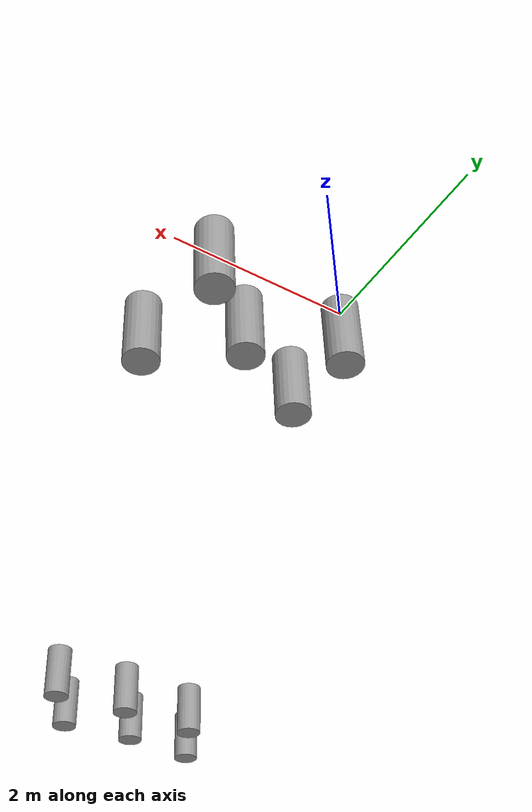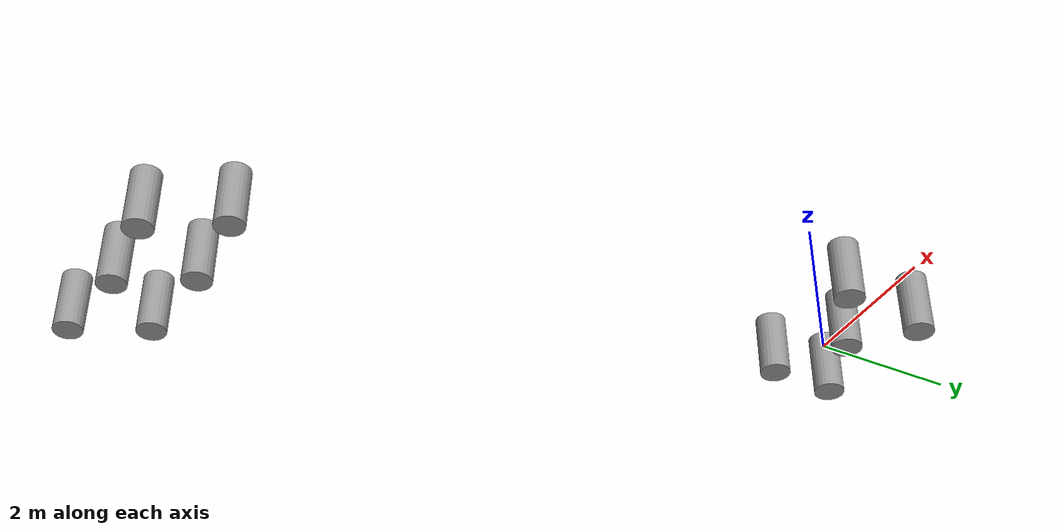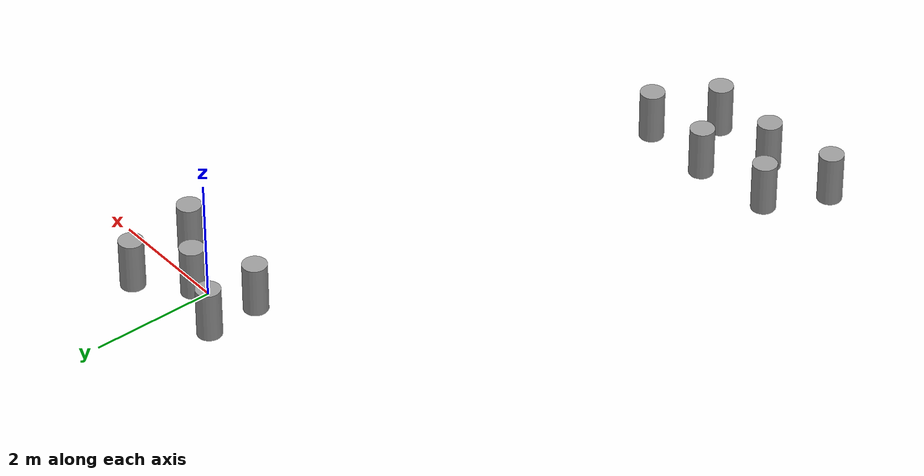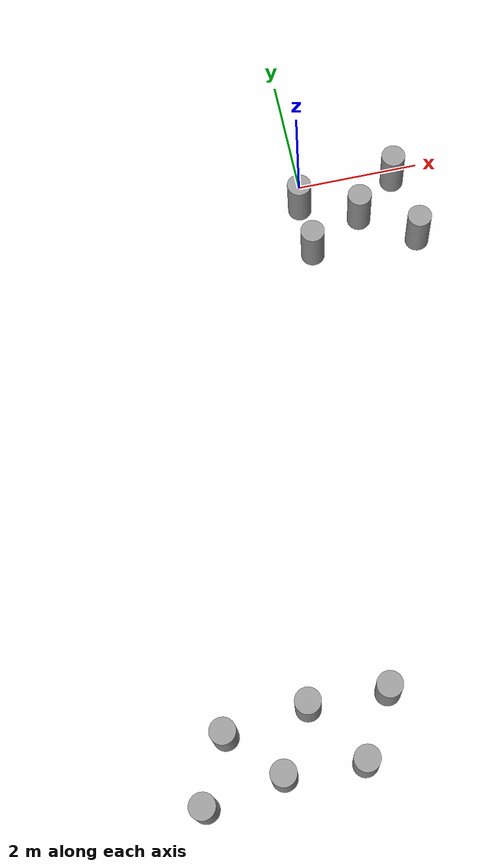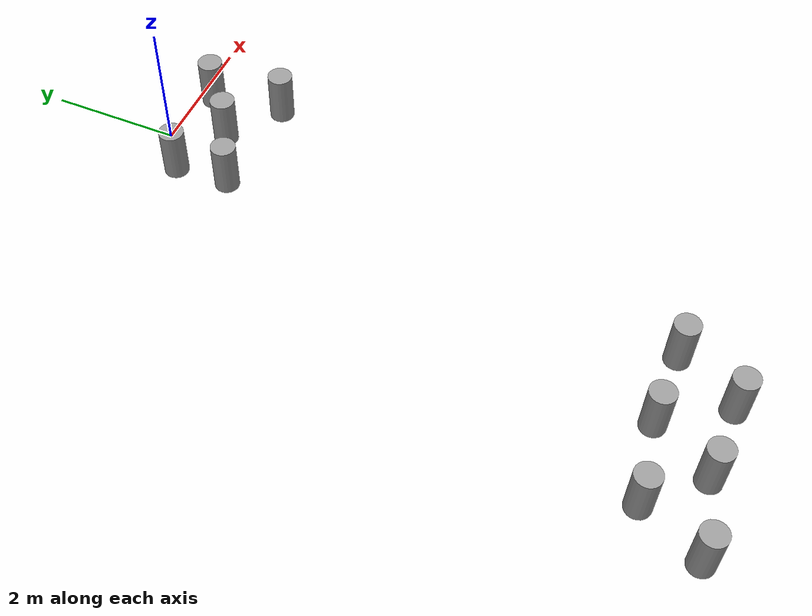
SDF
<?xml version='1.0'?>
<sdf version='1.7'>
  <model name='cilindro_01'>
    <link name='link'>
      <inertial>
        <mass>0.0394565</mass>
        <inertia>
          <ixx>0.00272074</ixx>
          <ixy>0</ixy>
          <ixz>0</ixz>
          <iyy>0.00272074</iyy>
          <iyz>0</iyz>
          <izz>0.00078004</izz>
        </inertia>
        <pose>0 0 0 0 -0 0</pose>
      </inertial>
      <self_collide>0</self_collide>
      <enable_wind>0</enable_wind>
      <kinematic>0</kinematic>
      <pose>-0 0 -0.322996 0 -0 0</pose>
      <gravity>1</gravity>
      <visual name='visual'>
        <geometry>
          <cylinder>
            <radius>0.198845</radius>
            <length>0.84193</length>
          </cylinder>
        </geometry>
        <material>
          <script>
            <name>Gazebo/Grey</name>
            <uri>file://media/materials/scripts/gazebo.material</uri>
          </script>
          <shader type='vertex'>
            <normal_map>__default__</normal_map>
          </shader>
          <ambient>0.128 0.128 0.128 1</ambient>
          <diffuse>0.128 0.128 0.128 1</diffuse>
          <specular>0.128 0.128 0.128 1</specular>
          <emissive>0 0 0 1</emissive>
        </material>
        <pose>0 0 0 0 -0 0</pose>
        <transparency>0</transparency>
        <cast_shadows>1</cast_shadows>
      </visual>
      <collision name='collision'>
        <laser_retro>0</laser_retro>
        <max_contacts>10</max_contacts>
        <pose>0 0 0 0 -0 0</pose>
        <geometry>
          <cylinder>
            <radius>0.198845</radius>
            <length>0.84193</length>
          </cylinder>
        </geometry>
        <surface>
          <friction>
            <ode>
              <mu>1</mu>
              <mu2>1</mu2>
              <fdir1>0 0 0</fdir1>
              <slip1>0</slip1>
              <slip2>0</slip2>
            </ode>
            <torsional>
              <coefficient>1</coefficient>
              <patch_radius>0</patch_radius>
              <surface_radius>0</surface_radius>
              <use_patch_radius>1</use_patch_radius>
              <ode>
                <slip>0</slip>
              </ode>
            </torsional>
          </friction>
          <bounce>
            <restitution_coefficient>0</restitution_coefficient>
            <threshold>1e+06</threshold>
          </bounce>
          <contact>
            <collide_without_contact>0</collide_without_contact>
            <collide_without_contact_bitmask>1</collide_without_contact_bitmask>
            <collide_bitmask>1</collide_bitmask>
            <ode>
              <soft_cfm>0</soft_cfm>
              <soft_erp>0.2</soft_erp>
              <kp>1e+13</kp>
              <kd>1</kd>
              <max_vel>0.01</max_vel>
              <min_depth>0</min_depth>
            </ode>
            <bullet>
              <split_impulse>1</split_impulse>
              <split_impulse_penetration_threshold>-0.01</split_impulse_penetration_threshold>
              <soft_cfm>0</soft_cfm>
              <soft_erp>0.2</soft_erp>
              <kp>1e+13</kp>
              <kd>1</kd>
            </bullet>
          </contact>
        </surface>
      </collision>
    </link>
    <link name='link_clone'>
      <inertial>
        <mass>0.0394565</mass>
        <inertia>
          <ixx>0.00272074</ixx>
          <ixy>0</ixy>
          <ixz>0</ixz>
          <iyy>0.00272074</iyy>
          <iyz>0</iyz>
          <izz>0.00078004</izz>
        </inertia>
        <pose>0 0 0 0 -0 0</pose>
      </inertial>
      <self_collide>0</self_collide>
      <enable_wind>0</enable_wind>
      <kinematic>0</kinematic>
      <pose>0.036663 -0.893591 -0.322997 1e-06 1e-06 0</pose>
      <gravity>1</gravity>
      <visual name='visual'>
        <geometry>
          <cylinder>
            <radius>0.198845</radius>
            <length>0.84193</length>
          </cylinder>
        </geometry>
        <material>
          <script>
            <name>Gazebo/Grey</name>
            <uri>file://media/materials/scripts/gazebo.material</uri>
          </script>
          <shader type='vertex'>
            <normal_map>__default__</normal_map>
          </shader>
          <ambient>0.128 0.128 0.128 1</ambient>
          <diffuse>0.128 0.128 0.128 1</diffuse>
          <specular>0.128 0.128 0.128 1</specular>
          <emissive>0 0 0 1</emissive>
        </material>
        <pose>0 0 0 0 -0 0</pose>
        <transparency>0</transparency>
        <cast_shadows>1</cast_shadows>
      </visual>
      <collision name='collision'>
        <laser_retro>0</laser_retro>
        <max_contacts>10</max_contacts>
        <pose>0 0 0 0 -0 0</pose>
        <geometry>
          <cylinder>
            <radius>0.198845</radius>
            <length>0.84193</length>
          </cylinder>
        </geometry>
        <surface>
          <friction>
            <ode>
              <mu>1</mu>
              <mu2>1</mu2>
              <fdir1>0 0 0</fdir1>
              <slip1>0</slip1>
              <slip2>0</slip2>
            </ode>
            <torsional>
              <coefficient>1</coefficient>
              <patch_radius>0</patch_radius>
              <surface_radius>0</surface_radius>
              <use_patch_radius>1</use_patch_radius>
              <ode>
                <slip>0</slip>
              </ode>
            </torsional>
          </friction>
          <bounce>
            <restitution_coefficient>0</restitution_coefficient>
            <threshold>1e+06</threshold>
          </bounce>
          <contact>
            <collide_without_contact>0</collide_without_contact>
            <collide_without_contact_bitmask>1</collide_without_contact_bitmask>
            <collide_bitmask>1</collide_bitmask>
            <ode>
              <soft_cfm>0</soft_cfm>
              <soft_erp>0.2</soft_erp>
              <kp>1e+13</kp>
              <kd>1</kd>
              <max_vel>0.01</max_vel>
              <min_depth>0</min_depth>
            </ode>
            <bullet>
              <split_impulse>1</split_impulse>
              <split_impulse_penetration_threshold>-0.01</split_impulse_penetration_threshold>
              <soft_cfm>0</soft_cfm>
              <soft_erp>0.2</soft_erp>
              <kp>1e+13</kp>
              <kd>1</kd>
            </bullet>
          </contact>
        </surface>
      </collision>
    </link>
    <link name='link_clone_0'>
      <inertial>
        <mass>0.0394565</mass>
        <inertia>
          <ixx>0.00272074</ixx>
          <ixy>0</ixy>
          <ixz>0</ixz>
          <iyy>0.00272074</iyy>
          <iyz>0</iyz>
          <izz>0.00078004</izz>
        </inertia>
        <pose>0 0 0 0 -0 0</pose>
      </inertial>
      <self_collide>0</self_collide>
      <enable_wind>0</enable_wind>
      <kinematic>0</kinematic>
      <pose>0.947696 -0.400326 -0.322998 1e-06 1e-06 0</pose>
      <gravity>1</gravity>
      <visual name='visual'>
        <geometry>
          <cylinder>
            <radius>0.198845</radius>
            <length>0.84193</length>
          </cylinder>
        </geometry>
        <material>
          <script>
            <name>Gazebo/Grey</name>
            <uri>file://media/materials/scripts/gazebo.material</uri>
          </script>
          <shader type='vertex'>
            <normal_map>__default__</normal_map>
          </shader>
          <ambient>0.128 0.128 0.128 1</ambient>
          <diffuse>0.128 0.128 0.128 1</diffuse>
          <specular>0.128 0.128 0.128 1</specular>
          <emissive>0 0 0 1</emissive>
        </material>
        <pose>0 0 0 0 -0 0</pose>
        <transparency>0</transparency>
        <cast_shadows>1</cast_shadows>
      </visual>
      <collision name='collision'>
        <laser_retro>0</laser_retro>
        <max_contacts>10</max_contacts>
        <pose>0 0 0 0 -0 0</pose>
        <geometry>
          <cylinder>
            <radius>0.198845</radius>
            <length>0.84193</length>
          </cylinder>
        </geometry>
        <surface>
          <friction>
            <ode>
              <mu>1</mu>
              <mu2>1</mu2>
              <fdir1>0 0 0</fdir1>
              <slip1>0</slip1>
              <slip2>0</slip2>
            </ode>
            <torsional>
              <coefficient>1</coefficient>
              <patch_radius>0</patch_radius>
              <surface_radius>0</surface_radius>
              <use_patch_radius>1</use_patch_radius>
              <ode>
                <slip>0</slip>
              </ode>
            </torsional>
          </friction>
          <bounce>
            <restitution_coefficient>0</restitution_coefficient>
            <threshold>1e+06</threshold>
          </bounce>
          <contact>
            <collide_without_contact>0</collide_without_contact>
            <collide_without_contact_bitmask>1</collide_without_contact_bitmask>
            <collide_bitmask>1</collide_bitmask>
            <ode>
              <soft_cfm>0</soft_cfm>
              <soft_erp>0.2</soft_erp>
              <kp>1e+13</kp>
              <kd>1</kd>
              <max_vel>0.01</max_vel>
              <min_depth>0</min_depth>
            </ode>
            <bullet>
              <split_impulse>1</split_impulse>
              <split_impulse_penetration_threshold>-0.01</split_impulse_penetration_threshold>
              <soft_cfm>0</soft_cfm>
              <soft_erp>0.2</soft_erp>
              <kp>1e+13</kp>
              <kd>1</kd>
            </bullet>
          </contact>
        </surface>
      </collision>
    </link>
    <link name='link_clone_1'>
      <inertial>
        <mass>0.0394565</mass>
        <inertia>
          <ixx>0.00272074</ixx>
          <ixy>0</ixy>
          <ixz>0</ixz>
          <iyy>0.00272074</iyy>
          <iyz>0</iyz>
          <izz>0.00078004</izz>
        </inertia>
        <pose>0 0 0 0 -0 0</pose>
      </inertial>
      <self_collide>0</self_collide>
      <enable_wind>0</enable_wind>
      <kinematic>0</kinematic>
      <pose>1.6677 0.204842 -0.322998 1e-06 1e-06 0</pose>
      <gravity>1</gravity>
      <visual name='visual'>
        <geometry>
          <cylinder>
            <radius>0.198845</radius>
            <length>0.84193</length>
          </cylinder>
        </geometry>
        <material>
          <script>
            <name>Gazebo/Grey</name>
            <uri>file://media/materials/scripts/gazebo.material</uri>
          </script>
          <shader type='vertex'>
            <normal_map>__default__</normal_map>
          </shader>
          <ambient>0.128 0.128 0.128 1</ambient>
          <diffuse>0.128 0.128 0.128 1</diffuse>
          <specular>0.128 0.128 0.128 1</specular>
          <emissive>0 0 0 1</emissive>
        </material>
        <pose>0 0 0 0 -0 0</pose>
        <transparency>0</transparency>
        <cast_shadows>1</cast_shadows>
      </visual>
      <collision name='collision'>
        <laser_retro>0</laser_retro>
        <max_contacts>10</max_contacts>
        <pose>0 0 0 0 -0 0</pose>
        <geometry>
          <cylinder>
            <radius>0.198845</radius>
            <length>0.84193</length>
          </cylinder>
        </geometry>
        <surface>
          <friction>
            <ode>
              <mu>1</mu>
              <mu2>1</mu2>
              <fdir1>0 0 0</fdir1>
              <slip1>0</slip1>
              <slip2>0</slip2>
            </ode>
            <torsional>
              <coefficient>1</coefficient>
              <patch_radius>0</patch_radius>
              <surface_radius>0</surface_radius>
              <use_patch_radius>1</use_patch_radius>
              <ode>
                <slip>0</slip>
              </ode>
            </torsional>
          </friction>
          <bounce>
            <restitution_coefficient>0</restitution_coefficient>
            <threshold>1e+06</threshold>
          </bounce>
          <contact>
            <collide_without_contact>0</collide_without_contact>
            <collide_without_contact_bitmask>1</collide_without_contact_bitmask>
            <collide_bitmask>1</collide_bitmask>
            <ode>
              <soft_cfm>0</soft_cfm>
              <soft_erp>0.2</soft_erp>
              <kp>1e+13</kp>
              <kd>1</kd>
              <max_vel>0.01</max_vel>
              <min_depth>0</min_depth>
            </ode>
            <bullet>
              <split_impulse>1</split_impulse>
              <split_impulse_penetration_threshold>-0.01</split_impulse_penetration_threshold>
              <soft_cfm>0</soft_cfm>
              <soft_erp>0.2</soft_erp>
              <kp>1e+13</kp>
              <kd>1</kd>
            </bullet>
          </contact>
        </surface>
      </collision>
    </link>
    <link name='link_clone_2'>
      <inertial>
        <mass>0.0394565</mass>
        <inertia>
          <ixx>0.00272074</ixx>
          <ixy>0</ixy>
          <ixz>0</ixz>
          <iyy>0.00272074</iyy>
          <iyz>0</iyz>
          <izz>0.00078004</izz>
        </inertia>
        <pose>0 0 0 0 -0 0</pose>
      </inertial>
      <self_collide>0</self_collide>
      <enable_wind>0</enable_wind>
      <kinematic>0</kinematic>
      <pose>1.82642 -0.998041 -0.323 1e-06 1e-06 0</pose>
      <gravity>1</gravity>
      <visual name='visual'>
        <geometry>
          <cylinder>
            <radius>0.198845</radius>
            <length>0.84193</length>
          </cylinder>
        </geometry>
        <material>
          <script>
            <name>Gazebo/Grey</name>
            <uri>file://media/materials/scripts/gazebo.material</uri>
          </script>
          <shader type='vertex'>
            <normal_map>__default__</normal_map>
          </shader>
          <ambient>0.128 0.128 0.128 1</ambient>
          <diffuse>0.128 0.128 0.128 1</diffuse>
          <specular>0.128 0.128 0.128 1</specular>
          <emissive>0 0 0 1</emissive>
        </material>
        <pose>0 0 0 0 -0 0</pose>
        <transparency>0</transparency>
        <cast_shadows>1</cast_shadows>
      </visual>
      <collision name='collision'>
        <laser_retro>0</laser_retro>
        <max_contacts>10</max_contacts>
        <pose>0 0 0 0 -0 0</pose>
        <geometry>
          <cylinder>
            <radius>0.198845</radius>
            <length>0.84193</length>
          </cylinder>
        </geometry>
        <surface>
          <friction>
            <ode>
              <mu>1</mu>
              <mu2>1</mu2>
              <fdir1>0 0 0</fdir1>
              <slip1>0</slip1>
              <slip2>0</slip2>
            </ode>
            <torsional>
              <coefficient>1</coefficient>
              <patch_radius>0</patch_radius>
              <surface_radius>0</surface_radius>
              <use_patch_radius>1</use_patch_radius>
              <ode>
                <slip>0</slip>
              </ode>
            </torsional>
          </friction>
          <bounce>
            <restitution_coefficient>0</restitution_coefficient>
            <threshold>1e+06</threshold>
          </bounce>
          <contact>
            <collide_without_contact>0</collide_without_contact>
            <collide_without_contact_bitmask>1</collide_without_contact_bitmask>
            <collide_bitmask>1</collide_bitmask>
            <ode>
              <soft_cfm>0</soft_cfm>
              <soft_erp>0.2</soft_erp>
              <kp>1e+13</kp>
              <kd>1</kd>
              <max_vel>0.01</max_vel>
              <min_depth>0</min_depth>
            </ode>
            <bullet>
              <split_impulse>1</split_impulse>
              <split_impulse_penetration_threshold>-0.01</split_impulse_penetration_threshold>
              <soft_cfm>0</soft_cfm>
              <soft_erp>0.2</soft_erp>
              <kp>1e+13</kp>
              <kd>1</kd>
            </bullet>
          </contact>
        </surface>
      </collision>
    </link>
    <link name='link_clone_3'>
      <inertial>
        <mass>0.0394565</mass>
        <inertia>
          <ixx>0.00272074</ixx>
          <ixy>0</ixy>
          <ixz>0</ixz>
          <iyy>0.00272074</iyy>
          <iyz>0</iyz>
          <izz>0.00078004</izz>
        </inertia>
        <pose>0 0 0 0 -0 0</pose>
      </inertial>
      <self_collide>0</self_collide>
      <enable_wind>0</enable_wind>
      <kinematic>0</kinematic>
      <pose>-2.93281 -8.46876 -0.323004 1e-06 1e-06 0</pose>
      <gravity>1</gravity>
      <visual name='visual'>
        <geometry>
          <cylinder>
            <radius>0.198845</radius>
            <length>0.84193</length>
          </cylinder>
        </geometry>
        <material>
          <script>
            <name>Gazebo/Grey</name>
            <uri>file://media/materials/scripts/gazebo.material</uri>
          </script>
          <shader type='vertex'>
            <normal_map>__default__</normal_map>
          </shader>
          <ambient>0.128 0.128 0.128 1</ambient>
          <diffuse>0.128 0.128 0.128 1</diffuse>
          <specular>0.128 0.128 0.128 1</specular>
          <emissive>0 0 0 1</emissive>
        </material>
        <pose>0 0 0 0 -0 0</pose>
        <transparency>0</transparency>
        <cast_shadows>1</cast_shadows>
      </visual>
      <collision name='collision'>
        <laser_retro>0</laser_retro>
        <max_contacts>10</max_contacts>
        <pose>0 0 0 0 -0 0</pose>
        <geometry>
          <cylinder>
            <radius>0.198845</radius>
            <length>0.84193</length>
          </cylinder>
        </geometry>
        <surface>
          <friction>
            <ode>
              <mu>1</mu>
              <mu2>1</mu2>
              <fdir1>0 0 0</fdir1>
              <slip1>0</slip1>
              <slip2>0</slip2>
            </ode>
            <torsional>
              <coefficient>1</coefficient>
              <patch_radius>0</patch_radius>
              <surface_radius>0</surface_radius>
              <use_patch_radius>1</use_patch_radius>
              <ode>
                <slip>0</slip>
              </ode>
            </torsional>
          </friction>
          <bounce>
            <restitution_coefficient>0</restitution_coefficient>
            <threshold>1e+06</threshold>
          </bounce>
          <contact>
            <collide_without_contact>0</collide_without_contact>
            <collide_without_contact_bitmask>1</collide_without_contact_bitmask>
            <collide_bitmask>1</collide_bitmask>
            <ode>
              <soft_cfm>0</soft_cfm>
              <soft_erp>0.2</soft_erp>
              <kp>1e+13</kp>
              <kd>1</kd>
              <max_vel>0.01</max_vel>
              <min_depth>0</min_depth>
            </ode>
            <bullet>
              <split_impulse>1</split_impulse>
              <split_impulse_penetration_threshold>-0.01</split_impulse_penetration_threshold>
              <soft_cfm>0</soft_cfm>
              <soft_erp>0.2</soft_erp>
              <kp>1e+13</kp>
              <kd>1</kd>
            </bullet>
          </contact>
        </surface>
      </collision>
    </link>
    <link name='link_clone_4'>
      <inertial>
        <mass>0.0394565</mass>
        <inertia>
          <ixx>0.00272074</ixx>
          <ixy>0</ixy>
          <ixz>0</ixz>
          <iyy>0.00272074</iyy>
          <iyz>0</iyz>
          <izz>0.00078004</izz>
        </inertia>
        <pose>0 0 0 0 -0 0</pose>
      </inertial>
      <self_collide>0</self_collide>
      <enable_wind>0</enable_wind>
      <kinematic>0</kinematic>
      <pose>-2.20155 -9.22768 -0.323006 1e-06 1e-06 0</pose>
      <gravity>1</gravity>
      <visual name='visual'>
        <geometry>
          <cylinder>
            <radius>0.198845</radius>
            <length>0.84193</length>
          </cylinder>
        </geometry>
        <material>
          <script>
            <name>Gazebo/Grey</name>
            <uri>file://media/materials/scripts/gazebo.material</uri>
          </script>
          <shader type='vertex'>
            <normal_map>__default__</normal_map>
          </shader>
          <ambient>0.128 0.128 0.128 1</ambient>
          <diffuse>0.128 0.128 0.128 1</diffuse>
          <specular>0.128 0.128 0.128 1</specular>
          <emissive>0 0 0 1</emissive>
        </material>
        <pose>0 0 0 0 -0 0</pose>
        <transparency>0</transparency>
        <cast_shadows>1</cast_shadows>
      </visual>
      <collision name='collision'>
        <laser_retro>0</laser_retro>
        <max_contacts>10</max_contacts>
        <pose>0 0 0 0 -0 0</pose>
        <geometry>
          <cylinder>
            <radius>0.198845</radius>
            <length>0.84193</length>
          </cylinder>
        </geometry>
        <surface>
          <friction>
            <ode>
              <mu>1</mu>
              <mu2>1</mu2>
              <fdir1>0 0 0</fdir1>
              <slip1>0</slip1>
              <slip2>0</slip2>
            </ode>
            <torsional>
              <coefficient>1</coefficient>
              <patch_radius>0</patch_radius>
              <surface_radius>0</surface_radius>
              <use_patch_radius>1</use_patch_radius>
              <ode>
                <slip>0</slip>
              </ode>
            </torsional>
          </friction>
          <bounce>
            <restitution_coefficient>0</restitution_coefficient>
            <threshold>1e+06</threshold>
          </bounce>
          <contact>
            <collide_without_contact>0</collide_without_contact>
            <collide_without_contact_bitmask>1</collide_without_contact_bitmask>
            <collide_bitmask>1</collide_bitmask>
            <ode>
              <soft_cfm>0</soft_cfm>
              <soft_erp>0.2</soft_erp>
              <kp>1e+13</kp>
              <kd>1</kd>
              <max_vel>0.01</max_vel>
              <min_depth>0</min_depth>
            </ode>
            <bullet>
              <split_impulse>1</split_impulse>
              <split_impulse_penetration_threshold>-0.01</split_impulse_penetration_threshold>
              <soft_cfm>0</soft_cfm>
              <soft_erp>0.2</soft_erp>
              <kp>1e+13</kp>
              <kd>1</kd>
            </bullet>
          </contact>
        </surface>
      </collision>
    </link>
    <link name='link_clone_5'>
      <inertial>
        <mass>0.0394565</mass>
        <inertia>
          <ixx>0.00272074</ixx>
          <ixy>0</ixy>
          <ixz>0</ixz>
          <iyy>0.00272074</iyy>
          <iyz>0</iyz>
          <izz>0.00078004</izz>
        </inertia>
        <pose>0 0 0 0 -0 0</pose>
      </inertial>
      <self_collide>0</self_collide>
      <enable_wind>0</enable_wind>
      <kinematic>0</kinematic>
      <pose>-1.65318 -8.31618 -0.323006 1e-06 1e-06 0</pose>
      <gravity>1</gravity>
      <visual name='visual'>
        <geometry>
          <cylinder>
            <radius>0.198845</radius>
            <length>0.84193</length>
          </cylinder>
        </geometry>
        <material>
          <script>
            <name>Gazebo/Grey</name>
            <uri>file://media/materials/scripts/gazebo.material</uri>
          </script>
          <shader type='vertex'>
            <normal_map>__default__</normal_map>
          </shader>
          <ambient>0.128 0.128 0.128 1</ambient>
          <diffuse>0.128 0.128 0.128 1</diffuse>
          <specular>0.128 0.128 0.128 1</specular>
          <emissive>0 0 0 1</emissive>
        </material>
        <pose>0 0 0 0 -0 0</pose>
        <transparency>0</transparency>
        <cast_shadows>1</cast_shadows>
      </visual>
      <collision name='collision'>
        <laser_retro>0</laser_retro>
        <max_contacts>10</max_contacts>
        <pose>0 0 0 0 -0 0</pose>
        <geometry>
          <cylinder>
            <radius>0.198845</radius>
            <length>0.84193</length>
          </cylinder>
        </geometry>
        <surface>
          <friction>
            <ode>
              <mu>1</mu>
              <mu2>1</mu2>
              <fdir1>0 0 0</fdir1>
              <slip1>0</slip1>
              <slip2>0</slip2>
            </ode>
            <torsional>
              <coefficient>1</coefficient>
              <patch_radius>0</patch_radius>
              <surface_radius>0</surface_radius>
              <use_patch_radius>1</use_patch_radius>
              <ode>
                <slip>0</slip>
              </ode>
            </torsional>
          </friction>
          <bounce>
            <restitution_coefficient>0</restitution_coefficient>
            <threshold>1e+06</threshold>
          </bounce>
          <contact>
            <collide_without_contact>0</collide_without_contact>
            <collide_without_contact_bitmask>1</collide_without_contact_bitmask>
            <collide_bitmask>1</collide_bitmask>
            <ode>
              <soft_cfm>0</soft_cfm>
              <soft_erp>0.2</soft_erp>
              <kp>1e+13</kp>
              <kd>1</kd>
              <max_vel>0.01</max_vel>
              <min_depth>0</min_depth>
            </ode>
            <bullet>
              <split_impulse>1</split_impulse>
              <split_impulse_penetration_threshold>-0.01</split_impulse_penetration_threshold>
              <soft_cfm>0</soft_cfm>
              <soft_erp>0.2</soft_erp>
              <kp>1e+13</kp>
              <kd>1</kd>
            </bullet>
          </contact>
        </surface>
      </collision>
    </link>
    <link name='link_clone_6'>
      <inertial>
        <mass>0.0394565</mass>
        <inertia>
          <ixx>0.00272074</ixx>
          <ixy>0</ixy>
          <ixz>0</ixz>
          <iyy>0.00272074</iyy>
          <iyz>0</iyz>
          <izz>0.00078004</izz>
        </inertia>
        <pose>0 0 0 0 -0 0</pose>
      </inertial>
      <self_collide>0</self_collide>
      <enable_wind>0</enable_wind>
      <kinematic>0</kinematic>
      <pose>-3.40514 -9.42164 -0.323005 1e-06 1e-06 0</pose>
      <gravity>1</gravity>
      <visual name='visual'>
        <geometry>
          <cylinder>
            <radius>0.198845</radius>
            <length>0.84193</length>
          </cylinder>
        </geometry>
        <material>
          <script>
            <name>Gazebo/Grey</name>
            <uri>file://media/materials/scripts/gazebo.material</uri>
          </script>
          <shader type='vertex'>
            <normal_map>__default__</normal_map>
          </shader>
          <ambient>0.128 0.128 0.128 1</ambient>
          <diffuse>0.128 0.128 0.128 1</diffuse>
          <specular>0.128 0.128 0.128 1</specular>
          <emissive>0 0 0 1</emissive>
        </material>
        <pose>0 0 0 0 -0 0</pose>
        <transparency>0</transparency>
        <cast_shadows>1</cast_shadows>
      </visual>
      <collision name='collision'>
        <laser_retro>0</laser_retro>
        <max_contacts>10</max_contacts>
        <pose>0 0 0 0 -0 0</pose>
        <geometry>
          <cylinder>
            <radius>0.198845</radius>
            <length>0.84193</length>
          </cylinder>
        </geometry>
        <surface>
          <friction>
            <ode>
              <mu>1</mu>
              <mu2>1</mu2>
              <fdir1>0 0 0</fdir1>
              <slip1>0</slip1>
              <slip2>0</slip2>
            </ode>
            <torsional>
              <coefficient>1</coefficient>
              <patch_radius>0</patch_radius>
              <surface_radius>0</surface_radius>
              <use_patch_radius>1</use_patch_radius>
              <ode>
                <slip>0</slip>
              </ode>
            </torsional>
          </friction>
          <bounce>
            <restitution_coefficient>0</restitution_coefficient>
            <threshold>1e+06</threshold>
          </bounce>
          <contact>
            <collide_without_contact>0</collide_without_contact>
            <collide_without_contact_bitmask>1</collide_without_contact_bitmask>
            <collide_bitmask>1</collide_bitmask>
            <ode>
              <soft_cfm>0</soft_cfm>
              <soft_erp>0.2</soft_erp>
              <kp>1e+13</kp>
              <kd>1</kd>
              <max_vel>0.01</max_vel>
              <min_depth>0</min_depth>
            </ode>
            <bullet>
              <split_impulse>1</split_impulse>
              <split_impulse_penetration_threshold>-0.01</split_impulse_penetration_threshold>
              <soft_cfm>0</soft_cfm>
              <soft_erp>0.2</soft_erp>
              <kp>1e+13</kp>
              <kd>1</kd>
            </bullet>
          </contact>
        </surface>
      </collision>
    </link>
    <link name='link_clone_7'>
      <inertial>
        <mass>0.0394565</mass>
        <inertia>
          <ixx>0.00272074</ixx>
          <ixy>0</ixy>
          <ixz>0</ixz>
          <iyy>0.00272074</iyy>
          <iyz>0</iyz>
          <izz>0.00078004</izz>
        </inertia>
        <pose>0 0 0 0 -0 0</pose>
      </inertial>
      <self_collide>0</self_collide>
      <enable_wind>0</enable_wind>
      <kinematic>0</kinematic>
      <pose>-0.998227 -9.28325 -0.323008 1e-06 1e-06 0</pose>
      <gravity>1</gravity>
      <visual name='visual'>
        <geometry>
          <cylinder>
            <radius>0.198845</radius>
            <length>0.84193</length>
          </cylinder>
        </geometry>
        <material>
          <script>
            <name>Gazebo/Grey</name>
            <uri>file://media/materials/scripts/gazebo.material</uri>
          </script>
          <shader type='vertex'>
            <normal_map>__default__</normal_map>
          </shader>
          <ambient>0.128 0.128 0.128 1</ambient>
          <diffuse>0.128 0.128 0.128 1</diffuse>
          <specular>0.128 0.128 0.128 1</specular>
          <emissive>0 0 0 1</emissive>
        </material>
        <pose>0 0 0 0 -0 0</pose>
        <transparency>0</transparency>
        <cast_shadows>1</cast_shadows>
      </visual>
      <collision name='collision'>
        <laser_retro>0</laser_retro>
        <max_contacts>10</max_contacts>
        <pose>0 0 0 0 -0 0</pose>
        <geometry>
          <cylinder>
            <radius>0.198845</radius>
            <length>0.84193</length>
          </cylinder>
        </geometry>
        <surface>
          <friction>
            <ode>
              <mu>1</mu>
              <mu2>1</mu2>
              <fdir1>0 0 0</fdir1>
              <slip1>0</slip1>
              <slip2>0</slip2>
            </ode>
            <torsional>
              <coefficient>1</coefficient>
              <patch_radius>0</patch_radius>
              <surface_radius>0</surface_radius>
              <use_patch_radius>1</use_patch_radius>
              <ode>
                <slip>0</slip>
              </ode>
            </torsional>
          </friction>
          <bounce>
            <restitution_coefficient>0</restitution_coefficient>
            <threshold>1e+06</threshold>
          </bounce>
          <contact>
            <collide_without_contact>0</collide_without_contact>
            <collide_without_contact_bitmask>1</collide_without_contact_bitmask>
            <collide_bitmask>1</collide_bitmask>
            <ode>
              <soft_cfm>0</soft_cfm>
              <soft_erp>0.2</soft_erp>
              <kp>1e+13</kp>
              <kd>1</kd>
              <max_vel>0.01</max_vel>
              <min_depth>0</min_depth>
            </ode>
            <bullet>
              <split_impulse>1</split_impulse>
              <split_impulse_penetration_threshold>-0.01</split_impulse_penetration_threshold>
              <soft_cfm>0</soft_cfm>
              <soft_erp>0.2</soft_erp>
              <kp>1e+13</kp>
              <kd>1</kd>
            </bullet>
          </contact>
        </surface>
      </collision>
    </link>
    <link name='link_clone_8'>
      <inertial>
        <mass>0.0394565</mass>
        <inertia>
          <ixx>0.00272074</ixx>
          <ixy>0</ixy>
          <ixz>0</ixz>
          <iyy>0.00272074</iyy>
          <iyz>0</iyz>
          <izz>0.00078004</izz>
        </inertia>
        <pose>0 0 0 0 -0 0</pose>
      </inertial>
      <self_collide>0</self_collide>
      <enable_wind>0</enable_wind>
      <kinematic>0</kinematic>
      <pose>-0.443077 -8.34162 -0.323008 1e-06 1e-06 0</pose>
      <gravity>1</gravity>
      <visual name='visual'>
        <geometry>
          <cylinder>
            <radius>0.198845</radius>
            <length>0.84193</length>
          </cylinder>
        </geometry>
        <material>
          <script>
            <name>Gazebo/Grey</name>
            <uri>file://media/materials/scripts/gazebo.material</uri>
          </script>
          <shader type='vertex'>
            <normal_map>__default__</normal_map>
          </shader>
          <ambient>0.128 0.128 0.128 1</ambient>
          <diffuse>0.128 0.128 0.128 1</diffuse>
          <specular>0.128 0.128 0.128 1</specular>
          <emissive>0 0 0 1</emissive>
        </material>
        <pose>0 0 0 0 -0 0</pose>
        <transparency>0</transparency>
        <cast_shadows>1</cast_shadows>
      </visual>
      <collision name='collision'>
        <laser_retro>0</laser_retro>
        <max_contacts>10</max_contacts>
        <pose>0 0 0 0 -0 0</pose>
        <geometry>
          <cylinder>
            <radius>0.198845</radius>
            <length>0.84193</length>
          </cylinder>
        </geometry>
        <surface>
          <friction>
            <ode>
              <mu>1</mu>
              <mu2>1</mu2>
              <fdir1>0 0 0</fdir1>
              <slip1>0</slip1>
              <slip2>0</slip2>
            </ode>
            <torsional>
              <coefficient>1</coefficient>
              <patch_radius>0</patch_radius>
              <surface_radius>0</surface_radius>
              <use_patch_radius>1</use_patch_radius>
              <ode>
                <slip>0</slip>
              </ode>
            </torsional>
          </friction>
          <bounce>
            <restitution_coefficient>0</restitution_coefficient>
            <threshold>1e+06</threshold>
          </bounce>
          <contact>
            <collide_without_contact>0</collide_without_contact>
            <collide_without_contact_bitmask>1</collide_without_contact_bitmask>
            <collide_bitmask>1</collide_bitmask>
            <ode>
              <soft_cfm>0</soft_cfm>
              <soft_erp>0.2</soft_erp>
              <kp>1e+13</kp>
              <kd>1</kd>
              <max_vel>0.01</max_vel>
              <min_depth>0</min_depth>
            </ode>
            <bullet>
              <split_impulse>1</split_impulse>
              <split_impulse_penetration_threshold>-0.01</split_impulse_penetration_threshold>
              <soft_cfm>0</soft_cfm>
              <soft_erp>0.2</soft_erp>
              <kp>1e+13</kp>
              <kd>1</kd>
            </bullet>
          </contact>
        </surface>
      </collision>
    </link>
    <static>0</static>
    <allow_auto_disable>1</allow_auto_disable>
  </model>
</sdf>
